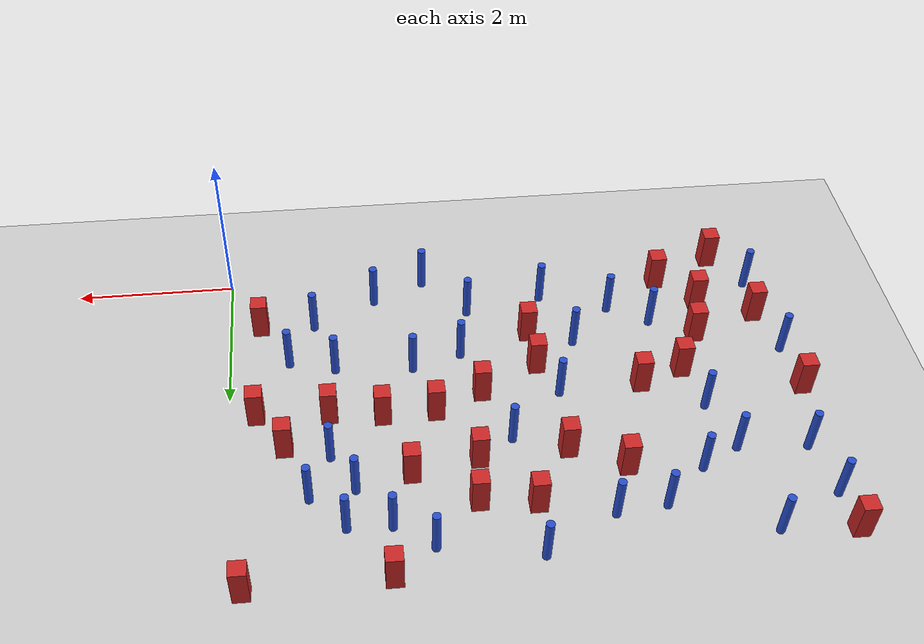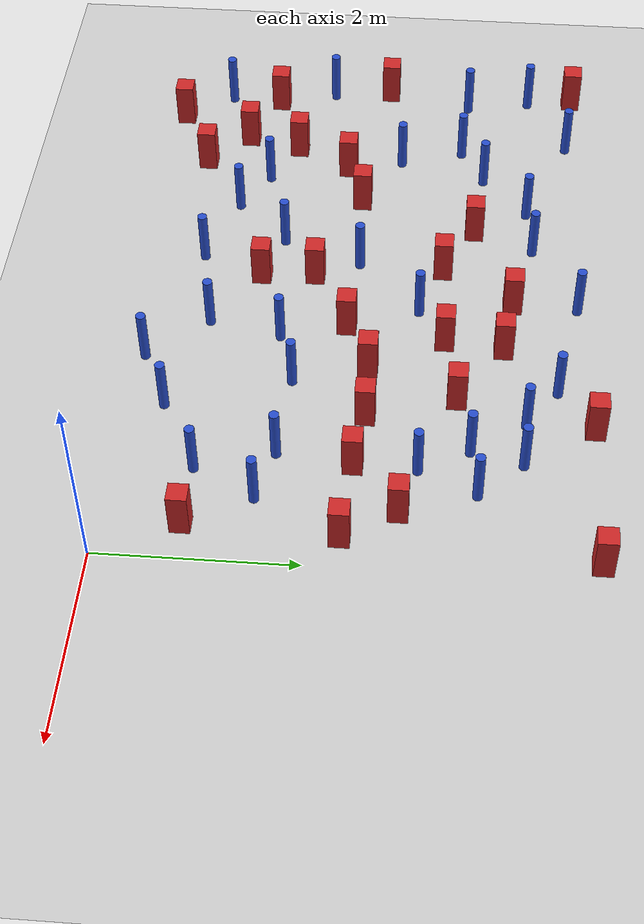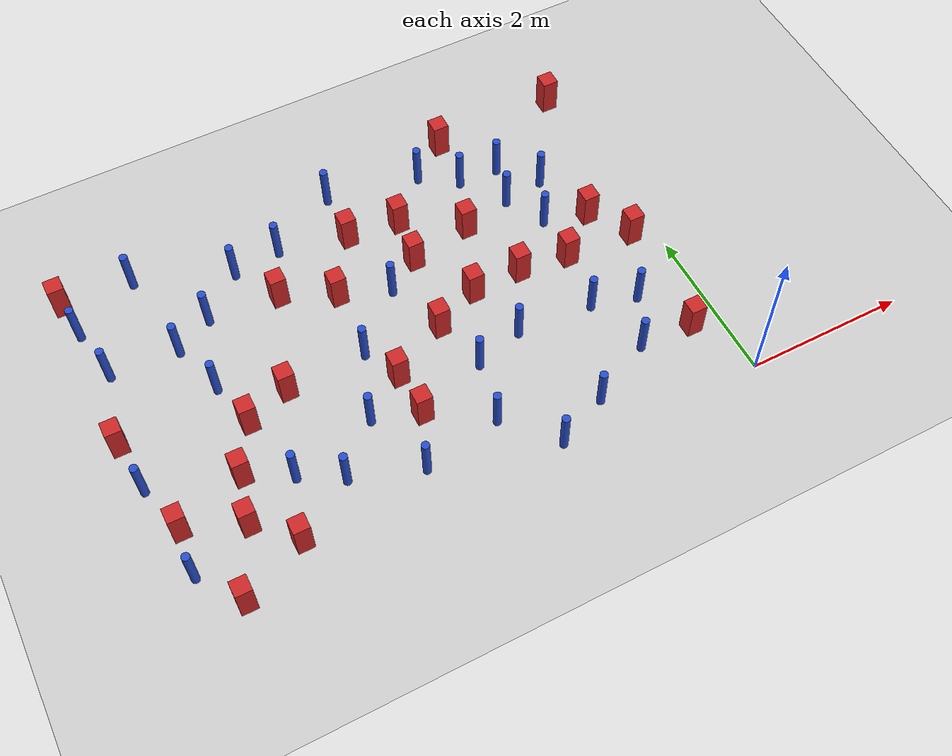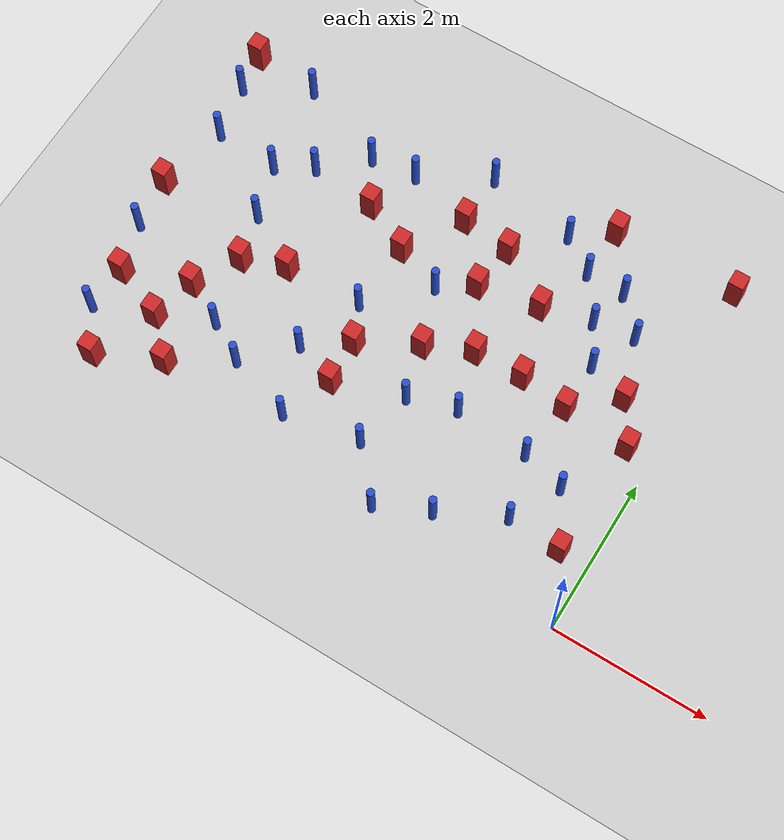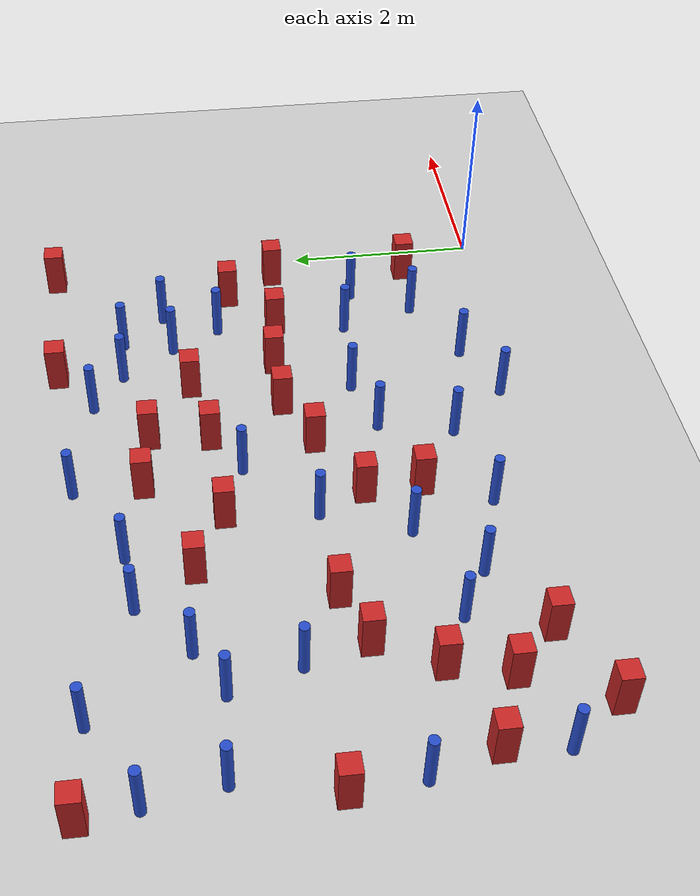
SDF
<sdf version="1.6">
 <world name="default">
  <model name="ground_plane">
   <static>1</static>
   <link name="link">
    <collision name="collision">
     <geometry><plane><normal>0 0 1</normal><size>100 100</size></plane></geometry>
     <surface><friction><ode><mu>100</mu><mu2>50</mu2></ode></friction></surface>
    </collision>
    <visual name="visual">
     <cast_shadows>0</cast_shadows>
     <geometry><plane><normal>0 0 1</normal><size>100 100</size></plane></geometry>
     <material>
      <ambient>1.0 1.0 1.0 1.0</ambient>
      <diffuse>0.8 0.8 0.8 1.0</diffuse>
      <specular>0.01 0.01 0.01 1.000000</specular>
     </material>
    </visual>
   </link>
  </model>
  <model name="square_post_obstacle1">
   <static>true</static>
   <pose>-6.99234724845 2.41279197193 8.22691968438e-08 7.2212513382e-06 -7.54495500217e-07 2.29674213826e-05</pose>
   <link name="link">
    <pose>0 0 0.25 0 -0 0</pose>
    <inertial>
     <mass>100</mass>
     <inertia>
      <ixx>0.166667</ixx>
      <ixy>0</ixy>
      <ixz>0</ixz>
      <iyy>0.166667</iyy>
      <iyz>0</iyz>
      <izz>0.166667</izz>
     </inertia>
    </inertial>
    <collision name="collision"><geometry><box><size>.2 .2 .5</size></box></geometry></collision>
    <visual name="visual">
     <geometry><box><size>.2 .2 .5</size></box></geometry>
     <material>
      <script><name>Gazebo/Red</name><uri>file://media/materials/scripts/gazebo.material</uri></script>
     </material>
    </visual>
   </link>
  </model>
  <model name="pole_obstacle0">
   <static>true</static>
   <pose>-2.29478972148 4.37844473224 2.88873142074e-08 -9.90536689859e-09 4.60219948989e-07 -1.20965994961e-07</pose>
   <link name="link">
    <pose>0 0 0.3 0 -0 0</pose>
    <inertial>
     <mass>1</mass>
     <inertia><ixx>0.145833</ixx><ixy>0</ixy><ixz>0</ixz><iyy>0.145833</iyy><iyz>0</iyz><izz>0.125</izz></inertia>
    </inertial>
    <collision name="collision">
     <geometry><cylinder><radius>0.05</radius><length>.6</length></cylinder></geometry>
    </collision>
    <visual name="visual">
     <geometry><cylinder><radius>0.05</radius><length>.6</length></cylinder></geometry>
     <material>
      <script><name>Gazebo/Blue</name><uri>file://media/materials/scripts/gazebo.material</uri></script>
     </material>
    </visual>
   </link>
  </model>
  <model name="square_post_obstacle3">
   <static>true</static>
   <pose>-3.4951687476 3.90393180794 8.22691968438e-08 7.2212513382e-06 -7.54495500217e-07 2.29674213826e-05</pose>
   <link name="link">
    <pose>0 0 0.25 0 -0 0</pose>
    <inertial>
     <mass>100</mass>
     <inertia>
      <ixx>0.166667</ixx>
      <ixy>0</ixy>
      <ixz>0</ixz>
      <iyy>0.166667</iyy>
      <iyz>0</iyz>
      <izz>0.166667</izz>
     </inertia>
    </inertial>
    <collision name="collision"><geometry><box><size>.2 .2 .5</size></box></geometry></collision>
    <visual name="visual">
     <geometry><box><size>.2 .2 .5</size></box></geometry>
     <material>
      <script><name>Gazebo/Red</name><uri>file://media/materials/scripts/gazebo.material</uri></script>
     </material>
    </visual>
   </link>
  </model>
  <model name="square_post_obstacle5">
   <static>true</static>
   <pose>-3.79861720325 1.78377909363 8.22691968438e-08 7.22125133819e-06 -7.54495500217e-07 2.29674213826e-05</pose>
   <link name="link">
    <pose>0 0 0.25 0 -0 0</pose>
    <inertial>
     <mass>100</mass>
     <inertia>
      <ixx>0.166667</ixx>
      <ixy>0</ixy>
      <ixz>0</ixz>
      <iyy>0.166667</iyy>
      <iyz>0</iyz>
      <izz>0.166667</izz>
     </inertia>
    </inertial>
    <collision name="collision"><geometry><box><size>.2 .2 .5</size></box></geometry></collision>
    <visual name="visual">
     <geometry><box><size>.2 .2 .5</size></box></geometry>
     <material>
      <script><name>Gazebo/Red</name><uri>file://media/materials/scripts/gazebo.material</uri></script>
     </material>
    </visual>
   </link>
  </model>
  <model name="pole_obstacle6">
   <static>true</static>
   <pose>-2.51424352725 0.137398515077 2.88873142074e-08 -9.90536689314e-09 4.60219949002e-07 -1.20965994953e-07</pose>
   <link name="link">
    <pose>0 0 0.3 0 -0 0</pose>
    <inertial>
     <mass>1</mass>
     <inertia><ixx>0.145833</ixx><ixy>0</ixy><ixz>0</ixz><iyy>0.145833</iyy><iyz>0</iyz><izz>0.125</izz></inertia>
    </inertial>
    <collision name="collision">
     <geometry><cylinder><radius>0.05</radius><length>.6</length></cylinder></geometry>
    </collision>
    <visual name="visual">
     <geometry><cylinder><radius>0.05</radius><length>.6</length></cylinder></geometry>
     <material>
      <script><name>Gazebo/Blue</name><uri>file://media/materials/scripts/gazebo.material</uri></script>
     </material>
    </visual>
   </link>
  </model>
  <model name="square_post_obstacle10">
   <static>true</static>
   <pose>-3.7672462123 1.2102745779 8.22691968438e-08 7.2212513382e-06 -7.54495500217e-07 2.29674213826e-05</pose>
   <link name="link">
    <pose>0 0 0.25 0 -0 0</pose>
    <inertial>
     <mass>100</mass>
     <inertia>
      <ixx>0.166667</ixx>
      <ixy>0</ixy>
      <ixz>0</ixz>
      <iyy>0.166667</iyy>
      <iyz>0</iyz>
      <izz>0.166667</izz>
     </inertia>
    </inertial>
    <collision name="collision"><geometry><box><size>.2 .2 .5</size></box></geometry></collision>
    <visual name="visual">
     <geometry><box><size>.2 .2 .5</size></box></geometry>
     <material>
      <script><name>Gazebo/Red</name><uri>file://media/materials/scripts/gazebo.material</uri></script>
     </material>
    </visual>
   </link>
  </model>
  <model name="square_post_obstacle17">
   <static>true</static>
   <pose>-4.60330524888 3.47028318909 8.22691968438e-08 7.2212513382e-06 -7.54495500217e-07 2.29674213826e-05</pose>
   <link name="link">
    <pose>0 0 0.25 0 -0 0</pose>
    <inertial>
     <mass>100</mass>
     <inertia>
      <ixx>0.166667</ixx>
      <ixy>0</ixy>
      <ixz>0</ixz>
      <iyy>0.166667</iyy>
      <iyz>0</iyz>
      <izz>0.166667</izz>
     </inertia>
    </inertial>
    <collision name="collision"><geometry><box><size>.2 .2 .5</size></box></geometry></collision>
    <visual name="visual">
     <geometry><box><size>.2 .2 .5</size></box></geometry>
     <material>
      <script><name>Gazebo/Red</name><uri>file://media/materials/scripts/gazebo.material</uri></script>
     </material>
    </visual>
   </link>
  </model>
  <model name="square_post_obstacle19">
   <static>true</static>
   <pose>-5.5775447937 2.00528172763 8.22691968438e-08 7.2212513382e-06 -7.54495500217e-07 2.29674213826e-05</pose>
   <link name="link">
    <pose>0 0 0.25 0 -0 0</pose>
    <inertial>
     <mass>100</mass>
     <inertia>
      <ixx>0.166667</ixx>
      <ixy>0</ixy>
      <ixz>0</ixz>
      <iyy>0.166667</iyy>
      <iyz>0</iyz>
      <izz>0.166667</izz>
     </inertia>
    </inertial>
    <collision name="collision"><geometry><box><size>.2 .2 .5</size></box></geometry></collision>
    <visual name="visual">
     <geometry><box><size>.2 .2 .5</size></box></geometry>
     <material>
      <script><name>Gazebo/Red</name><uri>file://media/materials/scripts/gazebo.material</uri></script>
     </material>
    </visual>
   </link>
  </model>
  <model name="pole_obstacle14">
   <static>true</static>
   <pose>-5.48069631043 3.55009263732 2.88873142074e-08 -9.90536690245e-09 4.6021994898e-07 -1.20965994966e-07</pose>
   <link name="link">
    <pose>0 0 0.3 0 -0 0</pose>
    <inertial>
     <mass>1</mass>
     <inertia><ixx>0.145833</ixx><ixy>0</ixy><ixz>0</ixz><iyy>0.145833</iyy><iyz>0</iyz><izz>0.125</izz></inertia>
    </inertial>
    <collision name="collision">
     <geometry><cylinder><radius>0.05</radius><length>.6</length></cylinder></geometry>
    </collision>
    <visual name="visual">
     <geometry><cylinder><radius>0.05</radius><length>.6</length></cylinder></geometry>
     <material>
      <script><name>Gazebo/Blue</name><uri>file://media/materials/scripts/gazebo.material</uri></script>
     </material>
    </visual>
   </link>
  </model>
  <model name="pole_obstacle23">
   <static>true</static>
   <pose>-4.02993113595 0.554640806604 2.88873142074e-08 -9.90536690176e-09 4.60219948981e-07 -1.20965994965e-07</pose>
   <link name="link">
    <pose>0 0 0.3 0 -0 0</pose>
    <inertial>
     <mass>1</mass>
     <inertia><ixx>0.145833</ixx><ixy>0</ixy><ixz>0</ixz><iyy>0.145833</iyy><iyz>0</iyz><izz>0.125</izz></inertia>
    </inertial>
    <collision name="collision">
     <geometry><cylinder><radius>0.05</radius><length>.6</length></cylinder></geometry>
    </collision>
    <visual name="visual">
     <geometry><cylinder><radius>0.05</radius><length>.6</length></cylinder></geometry>
     <material>
      <script><name>Gazebo/Blue</name><uri>file://media/materials/scripts/gazebo.material</uri></script>
     </material>
    </visual>
   </link>
  </model>
  <model name="pole_obstacle33">
   <static>true</static>
   <pose>-5.37251705867 1.12927887808 2.88873142074e-08 -9.90536689445e-09 4.60219948999e-07 -1.20965994956e-07</pose>
   <link name="link">
    <pose>0 0 0.3 0 -0 0</pose>
    <inertial>
     <mass>1</mass>
     <inertia><ixx>0.145833</ixx><ixy>0</ixy><ixz>0</ixz><iyy>0.145833</iyy><iyz>0</iyz><izz>0.125</izz></inertia>
    </inertial>
    <collision name="collision">
     <geometry><cylinder><radius>0.05</radius><length>.6</length></cylinder></geometry>
    </collision>
    <visual name="visual">
     <geometry><cylinder><radius>0.05</radius><length>.6</length></cylinder></geometry>
     <material>
      <script><name>Gazebo/Blue</name><uri>file://media/materials/scripts/gazebo.material</uri></script>
     </material>
    </visual>
   </link>
  </model>
  <model name="pole_obstacle34">
   <static>true</static>
   <pose>-1.19196894597 3.01277983991 2.88873142074e-08 -9.90536689791e-09 4.6021994899e-07 -1.20965994959e-07</pose>
   <link name="link">
    <pose>0 0 0.3 0 -0 0</pose>
    <inertial>
     <mass>1</mass>
     <inertia><ixx>0.145833</ixx><ixy>0</ixy><ixz>0</ixz><iyy>0.145833</iyy><iyz>0</iyz><izz>0.125</izz></inertia>
    </inertial>
    <collision name="collision">
     <geometry><cylinder><radius>0.05</radius><length>.6</length></cylinder></geometry>
    </collision>
    <visual name="visual">
     <geometry><cylinder><radius>0.05</radius><length>.6</length></cylinder></geometry>
     <material>
      <script><name>Gazebo/Blue</name><uri>file://media/materials/scripts/gazebo.material</uri></script>
     </material>
    </visual>
   </link>
  </model>
  <model name="pole_obstacle38">
   <static>true</static>
   <pose>-1.46026302297 3.51609721446 2.88873142074e-08 -9.90536689791e-09 4.6021994899e-07 -1.20965994959e-07</pose>
   <link name="link">
    <pose>0 0 0.3 0 -0 0</pose>
    <inertial>
     <mass>1</mass>
     <inertia><ixx>0.145833</ixx><ixy>0</ixy><ixz>0</ixz><iyy>0.145833</iyy><iyz>0</iyz><izz>0.125</izz></inertia>
    </inertial>
    <collision name="collision">
     <geometry><cylinder><radius>0.05</radius><length>.6</length></cylinder></geometry>
    </collision>
    <visual name="visual">
     <geometry><cylinder><radius>0.05</radius><length>.6</length></cylinder></geometry>
     <material>
      <script><name>Gazebo/Blue</name><uri>file://media/materials/scripts/gazebo.material</uri></script>
     </material>
    </visual>
   </link>
  </model>
  <model name="pole_obstacle39">
   <static>true</static>
   <pose>-5.94767400915 3.29031921714 2.88873142074e-08 -9.90536690245e-09 4.6021994898e-07 -1.20965994966e-07</pose>
   <link name="link">
    <pose>0 0 0.3 0 -0 0</pose>
    <inertial>
     <mass>1</mass>
     <inertia><ixx>0.145833</ixx><ixy>0</ixy><ixz>0</ixz><iyy>0.145833</iyy><iyz>0</iyz><izz>0.125</izz></inertia>
    </inertial>
    <collision name="collision">
     <geometry><cylinder><radius>0.05</radius><length>.6</length></cylinder></geometry>
    </collision>
    <visual name="visual">
     <geometry><cylinder><radius>0.05</radius><length>.6</length></cylinder></geometry>
     <material>
      <script><name>Gazebo/Blue</name><uri>file://media/materials/scripts/gazebo.material</uri></script>
     </material>
    </visual>
   </link>
  </model>
  <model name="pole_obstacle41">
   <static>true</static>
   <pose>-6.92758914699 1.74982321701 2.88873142074e-08 -9.90536689445e-09 4.60219948999e-07 -1.20965994956e-07</pose>
   <link name="link">
    <pose>0 0 0.3 0 -0 0</pose>
    <inertial>
     <mass>1</mass>
     <inertia><ixx>0.145833</ixx><ixy>0</ixy><ixz>0</ixz><iyy>0.145833</iyy><iyz>0</iyz><izz>0.125</izz></inertia>
    </inertial>
    <collision name="collision">
     <geometry><cylinder><radius>0.05</radius><length>.6</length></cylinder></geometry>
    </collision>
    <visual name="visual">
     <geometry><cylinder><radius>0.05</radius><length>.6</length></cylinder></geometry>
     <material>
      <script><name>Gazebo/Blue</name><uri>file://media/materials/scripts/gazebo.material</uri></script>
     </material>
    </visual>
   </link>
  </model>
  <model name="square_post_obstacle45">
   <static>true</static>
   <pose>-6.98330315581 4.55516592395 8.22691968438e-08 7.22125133819e-06 -7.54495500217e-07 2.29674213826e-05</pose>
   <link name="link">
    <pose>0 0 0.25 0 -0 0</pose>
    <inertial>
     <mass>100</mass>
     <inertia>
      <ixx>0.166667</ixx>
      <ixy>0</ixy>
      <ixz>0</ixz>
      <iyy>0.166667</iyy>
      <iyz>0</iyz>
      <izz>0.166667</izz>
     </inertia>
    </inertial>
    <collision name="collision"><geometry><box><size>.2 .2 .5</size></box></geometry></collision>
    <visual name="visual">
     <geometry><box><size>.2 .2 .5</size></box></geometry>
     <material>
      <script><name>Gazebo/Red</name><uri>file://media/materials/scripts/gazebo.material</uri></script>
     </material>
    </visual>
   </link>
  </model>
  <model name="square_post_obstacle49">
   <static>true</static>
   <pose>-6.73695536108 1.11498980576 8.22691968438e-08 7.2212513382e-06 -7.54495500217e-07 2.29674213826e-05</pose>
   <link name="link">
    <pose>0 0 0.25 0 -0 0</pose>
    <inertial>
     <mass>100</mass>
     <inertia>
      <ixx>0.166667</ixx>
      <ixy>0</ixy>
      <ixz>0</ixz>
      <iyy>0.166667</iyy>
      <iyz>0</iyz>
      <izz>0.166667</izz>
     </inertia>
    </inertial>
    <collision name="collision"><geometry><box><size>.2 .2 .5</size></box></geometry></collision>
    <visual name="visual">
     <geometry><box><size>.2 .2 .5</size></box></geometry>
     <material>
      <script><name>Gazebo/Red</name><uri>file://media/materials/scripts/gazebo.material</uri></script>
     </material>
    </visual>
   </link>
  </model>
  <model name="square_post_obstacle52">
   <static>true</static>
   <pose>-0.18206388332 4.77718517409 8.22691968438e-08 7.22125133819e-06 -7.54495500217e-07 2.29674213826e-05</pose>
   <link name="link">
    <pose>0 0 0.25 0 -0 0</pose>
    <inertial>
     <mass>100</mass>
     <inertia>
      <ixx>0.166667</ixx>
      <ixy>0</ixy>
      <ixz>0</ixz>
      <iyy>0.166667</iyy>
      <iyz>0</iyz>
      <izz>0.166667</izz>
     </inertia>
    </inertial>
    <collision name="collision"><geometry><box><size>.2 .2 .5</size></box></geometry></collision>
    <visual name="visual">
     <geometry><box><size>.2 .2 .5</size></box></geometry>
     <material>
      <script><name>Gazebo/Red</name><uri>file://media/materials/scripts/gazebo.material</uri></script>
     </material>
    </visual>
   </link>
  </model>
  <model name="pole_obstacle62">
   <static>true</static>
   <pose>-3.34190980343 2.92348845125 2.88873142074e-08 -9.90536689597e-09 4.60219948995e-07 -1.20965994957e-07</pose>
   <link name="link">
    <pose>0 0 0.3 0 -0 0</pose>
    <inertial>
     <mass>1</mass>
     <inertia><ixx>0.145833</ixx><ixy>0</ixy><ixz>0</ixz><iyy>0.145833</iyy><iyz>0</iyz><izz>0.125</izz></inertia>
    </inertial>
    <collision name="collision">
     <geometry><cylinder><radius>0.05</radius><length>.6</length></cylinder></geometry>
    </collision>
    <visual name="visual">
     <geometry><cylinder><radius>0.05</radius><length>.6</length></cylinder></geometry>
     <material>
      <script><name>Gazebo/Blue</name><uri>file://media/materials/scripts/gazebo.material</uri></script>
     </material>
    </visual>
   </link>
  </model>
  <model name="pole_obstacle63">
   <static>true</static>
   <pose>-3.47815531488 4.59109329088 2.88873142074e-08 -9.90536692062e-09 4.60219948937e-07 -1.20965994985e-07</pose>
   <link name="link">
    <pose>0 0 0.3 0 -0 0</pose>
    <inertial>
     <mass>1</mass>
     <inertia><ixx>0.145833</ixx><ixy>0</ixy><ixz>0</ixz><iyy>0.145833</iyy><iyz>0</iyz><izz>0.125</izz></inertia>
    </inertial>
    <collision name="collision">
     <geometry><cylinder><radius>0.05</radius><length>.6</length></cylinder></geometry>
    </collision>
    <visual name="visual">
     <geometry><cylinder><radius>0.05</radius><length>.6</length></cylinder></geometry>
     <material>
      <script><name>Gazebo/Blue</name><uri>file://media/materials/scripts/gazebo.material</uri></script>
     </material>
    </visual>
   </link>
  </model>
  <model name="square_post_obstacle75">
   <static>true</static>
   <pose>-1.20363890253 2.38159558971 8.22691968438e-08 7.2212513382e-06 -7.54495500217e-07 2.29674213826e-05</pose>
   <link name="link">
    <pose>0 0 0.25 0 -0 0</pose>
    <inertial>
     <mass>100</mass>
     <inertia>
      <ixx>0.166667</ixx>
      <ixy>0</ixy>
      <ixz>0</ixz>
      <iyy>0.166667</iyy>
      <iyz>0</iyz>
      <izz>0.166667</izz>
     </inertia>
    </inertial>
    <collision name="collision"><geometry><box><size>.2 .2 .5</size></box></geometry></collision>
    <visual name="visual">
     <geometry><box><size>.2 .2 .5</size></box></geometry>
     <material>
      <script><name>Gazebo/Red</name><uri>file://media/materials/scripts/gazebo.material</uri></script>
     </material>
    </visual>
   </link>
  </model>
  <model name="pole_obstacle70">
   <static>true</static>
   <pose>-1.30500850163 1.6211904246 2.88873142074e-08 -9.90536689672e-09 4.60219948993e-07 -1.20965994959e-07</pose>
   <link name="link">
    <pose>0 0 0.3 0 -0 0</pose>
    <inertial>
     <mass>1</mass>
     <inertia><ixx>0.145833</ixx><ixy>0</ixy><ixz>0</ixz><iyy>0.145833</iyy><iyz>0</iyz><izz>0.125</izz></inertia>
    </inertial>
    <collision name="collision">
     <geometry><cylinder><radius>0.05</radius><length>.6</length></cylinder></geometry>
    </collision>
    <visual name="visual">
     <geometry><cylinder><radius>0.05</radius><length>.6</length></cylinder></geometry>
     <material>
      <script><name>Gazebo/Blue</name><uri>file://media/materials/scripts/gazebo.material</uri></script>
     </material>
    </visual>
   </link>
  </model>
  <model name="pole_obstacle76">
   <static>true</static>
   <pose>-1.06769631439 0.840580318778 2.88873142074e-08 -9.90536689692e-09 4.60219948993e-07 -1.20965994958e-07</pose>
   <link name="link">
    <pose>0 0 0.3 0 -0 0</pose>
    <inertial>
     <mass>1</mass>
     <inertia><ixx>0.145833</ixx><ixy>0</ixy><ixz>0</ixz><iyy>0.145833</iyy><iyz>0</iyz><izz>0.125</izz></inertia>
    </inertial>
    <collision name="collision">
     <geometry><cylinder><radius>0.05</radius><length>.6</length></cylinder></geometry>
    </collision>
    <visual name="visual">
     <geometry><cylinder><radius>0.05</radius><length>.6</length></cylinder></geometry>
     <material>
      <script><name>Gazebo/Blue</name><uri>file://media/materials/scripts/gazebo.material</uri></script>
     </material>
    </visual>
   </link>
  </model>
  <model name="square_post_obstacle77">
   <static>true</static>
   <pose>-3.06769729861 2.17916987684 8.22691968438e-08 7.2212513382e-06 -7.54495500217e-07 2.29674213826e-05</pose>
   <link name="link">
    <pose>0 0 0.25 0 -0 0</pose>
    <inertial>
     <mass>100</mass>
     <inertia>
      <ixx>0.166667</ixx>
      <ixy>0</ixy>
      <ixz>0</ixz>
      <iyy>0.166667</iyy>
      <iyz>0</iyz>
      <izz>0.166667</izz>
     </inertia>
    </inertial>
    <collision name="collision"><geometry><box><size>.2 .2 .5</size></box></geometry></collision>
    <visual name="visual">
     <geometry><box><size>.2 .2 .5</size></box></geometry>
     <material>
      <script><name>Gazebo/Red</name><uri>file://media/materials/scripts/gazebo.material</uri></script>
     </material>
    </visual>
   </link>
  </model>
  <model name="pole_obstacle80">
   <static>true</static>
   <pose>-5.73793172201 2.61033689047 2.88873142074e-08 -9.90536690245e-09 4.6021994898e-07 -1.20965994966e-07</pose>
   <link name="link">
    <pose>0 0 0.3 0 -0 0</pose>
    <inertial>
     <mass>1</mass>
     <inertia><ixx>0.145833</ixx><ixy>0</ixy><ixz>0</ixz><iyy>0.145833</iyy><iyz>0</iyz><izz>0.125</izz></inertia>
    </inertial>
    <collision name="collision">
     <geometry><cylinder><radius>0.05</radius><length>.6</length></cylinder></geometry>
    </collision>
    <visual name="visual">
     <geometry><cylinder><radius>0.05</radius><length>.6</length></cylinder></geometry>
     <material>
      <script><name>Gazebo/Blue</name><uri>file://media/materials/scripts/gazebo.material</uri></script>
     </material>
    </visual>
   </link>
  </model>
  <model name="pole_obstacle85">
   <static>true</static>
   <pose>-6.11553343876 4.48749596979 2.88873142074e-08 -9.90536690842e-09 4.60219948965e-07 -1.20965994976e-07</pose>
   <link name="link">
    <pose>0 0 0.3 0 -0 0</pose>
    <inertial>
     <mass>1</mass>
     <inertia><ixx>0.145833</ixx><ixy>0</ixy><ixz>0</ixz><iyy>0.145833</iyy><iyz>0</iyz><izz>0.125</izz></inertia>
    </inertial>
    <collision name="collision">
     <geometry><cylinder><radius>0.05</radius><length>.6</length></cylinder></geometry>
    </collision>
    <visual name="visual">
     <geometry><cylinder><radius>0.05</radius><length>.6</length></cylinder></geometry>
     <material>
      <script><name>Gazebo/Blue</name><uri>file://media/materials/scripts/gazebo.material</uri></script>
     </material>
    </visual>
   </link>
  </model>
  <model name="pole_obstacle86">
   <static>true</static>
   <pose>-4.33051756364 1.40411948128 2.88873142074e-08 -9.90536689445e-09 4.60219948999e-07 -1.20965994956e-07</pose>
   <link name="link">
    <pose>0 0 0.3 0 -0 0</pose>
    <inertial>
     <mass>1</mass>
     <inertia><ixx>0.145833</ixx><ixy>0</ixy><ixz>0</ixz><iyy>0.145833</iyy><iyz>0</iyz><izz>0.125</izz></inertia>
    </inertial>
    <collision name="collision">
     <geometry><cylinder><radius>0.05</radius><length>.6</length></cylinder></geometry>
    </collision>
    <visual name="visual">
     <geometry><cylinder><radius>0.05</radius><length>.6</length></cylinder></geometry>
     <material>
      <script><name>Gazebo/Blue</name><uri>file://media/materials/scripts/gazebo.material</uri></script>
     </material>
    </visual>
   </link>
  </model>
  <model name="pole_obstacle90">
   <static>true</static>
   <pose>-1.86055483216 0.433381364916 2.88873142074e-08 -9.90536689733e-09 4.60219948992e-07 -1.20965994959e-07</pose>
   <link name="link">
    <pose>0 0 0.3 0 -0 0</pose>
    <inertial>
     <mass>1</mass>
     <inertia><ixx>0.145833</ixx><ixy>0</ixy><ixz>0</ixz><iyy>0.145833</iyy><iyz>0</iyz><izz>0.125</izz></inertia>
    </inertial>
    <collision name="collision">
     <geometry><cylinder><radius>0.05</radius><length>.6</length></cylinder></geometry>
    </collision>
    <visual name="visual">
     <geometry><cylinder><radius>0.05</radius><length>.6</length></cylinder></geometry>
     <material>
      <script><name>Gazebo/Blue</name><uri>file://media/materials/scripts/gazebo.material</uri></script>
     </material>
    </visual>
   </link>
  </model>
  <model name="square_post_obstacle94">
   <static>true</static>
   <pose>-5.60438121168 0.384743408011 8.22691968438e-08 7.22125133819e-06 -7.54495500217e-07 2.29674213826e-05</pose>
   <link name="link">
    <pose>0 0 0.25 0 -0 0</pose>
    <inertial>
     <mass>100</mass>
     <inertia>
      <ixx>0.166667</ixx>
      <ixy>0</ixy>
      <ixz>0</ixz>
      <iyy>0.166667</iyy>
      <iyz>0</iyz>
      <izz>0.166667</izz>
     </inertia>
    </inertial>
    <collision name="collision"><geometry><box><size>.2 .2 .5</size></box></geometry></collision>
    <visual name="visual">
     <geometry><box><size>.2 .2 .5</size></box></geometry>
     <material>
      <script><name>Gazebo/Red</name><uri>file://media/materials/scripts/gazebo.material</uri></script>
     </material>
    </visual>
   </link>
  </model>
  <model name="pole_obstacle107">
   <static>true</static>
   <pose>-2.88154702013 1.49941745192 2.88873142074e-08 -9.90536689395e-09 4.60219949e-07 -1.20965994953e-07</pose>
   <link name="link">
    <pose>0 0 0.3 0 -0 0</pose>
    <inertial>
     <mass>1</mass>
     <inertia><ixx>0.145833</ixx><ixy>0</ixy><ixz>0</ixz><iyy>0.145833</iyy><iyz>0</iyz><izz>0.125</izz></inertia>
    </inertial>
    <collision name="collision">
     <geometry><cylinder><radius>0.05</radius><length>.6</length></cylinder></geometry>
    </collision>
    <visual name="visual">
     <geometry><cylinder><radius>0.05</radius><length>.6</length></cylinder></geometry>
     <material>
      <script><name>Gazebo/Blue</name><uri>file://media/materials/scripts/gazebo.material</uri></script>
     </material>
    </visual>
   </link>
  </model>
  <model name="pole_obstacle112">
   <static>true</static>
   <pose>-2.26708684215 1.68302641234 2.88873142074e-08 -9.90536689395e-09 4.60219949e-07 -1.20965994953e-07</pose>
   <link name="link">
    <pose>0 0 0.3 0 -0 0</pose>
    <inertial>
     <mass>1</mass>
     <inertia><ixx>0.145833</ixx><ixy>0</ixy><ixz>0</ixz><iyy>0.145833</iyy><iyz>0</iyz><izz>0.125</izz></inertia>
    </inertial>
    <collision name="collision">
     <geometry><cylinder><radius>0.05</radius><length>.6</length></cylinder></geometry>
    </collision>
    <visual name="visual">
     <geometry><cylinder><radius>0.05</radius><length>.6</length></cylinder></geometry>
     <material>
      <script><name>Gazebo/Blue</name><uri>file://media/materials/scripts/gazebo.material</uri></script>
     </material>
    </visual>
   </link>
  </model>
  <model name="square_post_obstacle111">
   <static>true</static>
   <pose>-0.658460676233 2.85403619867 8.22691968438e-08 7.2212513382e-06 -7.54495500217e-07 2.29674213826e-05</pose>
   <link name="link">
    <pose>0 0 0.25 0 -0 0</pose>
    <inertial>
     <mass>100</mass>
     <inertia>
      <ixx>0.166667</ixx>
      <ixy>0</ixy>
      <ixz>0</ixz>
      <iyy>0.166667</iyy>
      <iyz>0</iyz>
      <izz>0.166667</izz>
     </inertia>
    </inertial>
    <collision name="collision"><geometry><box><size>.2 .2 .5</size></box></geometry></collision>
    <visual name="visual">
     <geometry><box><size>.2 .2 .5</size></box></geometry>
     <material>
      <script><name>Gazebo/Red</name><uri>file://media/materials/scripts/gazebo.material</uri></script>
     </material>
    </visual>
   </link>
  </model>
  <model name="pole_obstacle129">
   <static>true</static>
   <pose>-0.925250714462 3.60135355044 2.88873142074e-08 -9.90536689636e-09 4.60219948994e-07 -1.20965994958e-07</pose>
   <link name="link">
    <pose>0 0 0.3 0 -0 0</pose>
    <inertial>
     <mass>1</mass>
     <inertia><ixx>0.145833</ixx><ixy>0</ixy><ixz>0</ixz><iyy>0.145833</iyy><iyz>0</iyz><izz>0.125</izz></inertia>
    </inertial>
    <collision name="collision">
     <geometry><cylinder><radius>0.05</radius><length>.6</length></cylinder></geometry>
    </collision>
    <visual name="visual">
     <geometry><cylinder><radius>0.05</radius><length>.6</length></cylinder></geometry>
     <material>
      <script><name>Gazebo/Blue</name><uri>file://media/materials/scripts/gazebo.material</uri></script>
     </material>
    </visual>
   </link>
  </model>
  <model name="pole_obstacle135">
   <static>true</static>
   <pose>-6.9210140498 4.04785901093 2.88873142074e-08 -9.90536690763e-09 4.60219948967e-07 -1.20965994975e-07</pose>
   <link name="link">
    <pose>0 0 0.3 0 -0 0</pose>
    <inertial>
     <mass>1</mass>
     <inertia><ixx>0.145833</ixx><ixy>0</ixy><ixz>0</ixz><iyy>0.145833</iyy><iyz>0</iyz><izz>0.125</izz></inertia>
    </inertial>
    <collision name="collision">
     <geometry><cylinder><radius>0.05</radius><length>.6</length></cylinder></geometry>
    </collision>
    <visual name="visual">
     <geometry><cylinder><radius>0.05</radius><length>.6</length></cylinder></geometry>
     <material>
      <script><name>Gazebo/Blue</name><uri>file://media/materials/scripts/gazebo.material</uri></script>
     </material>
    </visual>
   </link>
  </model>
  <model name="square_post_obstacle131">
   <static>true</static>
   <pose>-5.02670868919 2.20553475868 8.22691968438e-08 7.2212513382e-06 -7.54495500217e-07 2.29674213826e-05</pose>
   <link name="link">
    <pose>0 0 0.25 0 -0 0</pose>
    <inertial>
     <mass>100</mass>
     <inertia>
      <ixx>0.166667</ixx>
      <ixy>0</ixy>
      <ixz>0</ixz>
      <iyy>0.166667</iyy>
      <iyz>0</iyz>
      <izz>0.166667</izz>
     </inertia>
    </inertial>
    <collision name="collision"><geometry><box><size>.2 .2 .5</size></box></geometry></collision>
    <visual name="visual">
     <geometry><box><size>.2 .2 .5</size></box></geometry>
     <material>
      <script><name>Gazebo/Red</name><uri>file://media/materials/scripts/gazebo.material</uri></script>
     </material>
    </visual>
   </link>
  </model>
  <model name="square_post_obstacle150">
   <static>true</static>
   <pose>-2.83639520328 3.82017207054 8.22691968438e-08 7.2212513382e-06 -7.54495500217e-07 2.29674213826e-05</pose>
   <link name="link">
    <pose>0 0 0.25 0 -0 0</pose>
    <inertial>
     <mass>100</mass>
     <inertia>
      <ixx>0.166667</ixx>
      <ixy>0</ixy>
      <ixz>0</ixz>
      <iyy>0.166667</iyy>
      <iyz>0</iyz>
      <izz>0.166667</izz>
     </inertia>
    </inertial>
    <collision name="collision"><geometry><box><size>.2 .2 .5</size></box></geometry></collision>
    <visual name="visual">
     <geometry><box><size>.2 .2 .5</size></box></geometry>
     <material>
      <script><name>Gazebo/Red</name><uri>file://media/materials/scripts/gazebo.material</uri></script>
     </material>
    </visual>
   </link>
  </model>
  <model name="square_post_obstacle153">
   <static>true</static>
   <pose>-1.83958237217 2.45895787099 8.22691968438e-08 7.2212513382e-06 -7.54495500217e-07 2.29674213826e-05</pose>
   <link name="link">
    <pose>0 0 0.25 0 -0 0</pose>
    <inertial>
     <mass>100</mass>
     <inertia>
      <ixx>0.166667</ixx>
      <ixy>0</ixy>
      <ixz>0</ixz>
      <iyy>0.166667</iyy>
      <iyz>0</iyz>
      <izz>0.166667</izz>
     </inertia>
    </inertial>
    <collision name="collision"><geometry><box><size>.2 .2 .5</size></box></geometry></collision>
    <visual name="visual">
     <geometry><box><size>.2 .2 .5</size></box></geometry>
     <material>
      <script><name>Gazebo/Red</name><uri>file://media/materials/scripts/gazebo.material</uri></script>
     </material>
    </visual>
   </link>
  </model>
  <model name="pole_obstacle163">
   <static>true</static>
   <pose>-3.04925418162 0.743153620455 2.88873142074e-08 -9.90536690901e-09 4.60219948964e-07 -1.20965994979e-07</pose>
   <link name="link">
    <pose>0 0 0.3 0 -0 0</pose>
    <inertial>
     <mass>1</mass>
     <inertia><ixx>0.145833</ixx><ixy>0</ixy><ixz>0</ixz><iyy>0.145833</iyy><iyz>0</iyz><izz>0.125</izz></inertia>
    </inertial>
    <collision name="collision">
     <geometry><cylinder><radius>0.05</radius><length>.6</length></cylinder></geometry>
    </collision>
    <visual name="visual">
     <geometry><cylinder><radius>0.05</radius><length>.6</length></cylinder></geometry>
     <material>
      <script><name>Gazebo/Blue</name><uri>file://media/materials/scripts/gazebo.material</uri></script>
     </material>
    </visual>
   </link>
  </model>
  <model name="square_post_obstacle158">
   <static>true</static>
   <pose>-3.96459720819 3.15129335369 8.22691968438e-08 7.22125133819e-06 -7.54495500217e-07 2.29674213826e-05</pose>
   <link name="link">
    <pose>0 0 0.25 0 -0 0</pose>
    <inertial>
     <mass>100</mass>
     <inertia>
      <ixx>0.166667</ixx>
      <ixy>0</ixy>
      <ixz>0</ixz>
      <iyy>0.166667</iyy>
      <iyz>0</iyz>
      <izz>0.166667</izz>
     </inertia>
    </inertial>
    <collision name="collision"><geometry><box><size>.2 .2 .5</size></box></geometry></collision>
    <visual name="visual">
     <geometry><box><size>.2 .2 .5</size></box></geometry>
     <material>
      <script><name>Gazebo/Red</name><uri>file://media/materials/scripts/gazebo.material</uri></script>
     </material>
    </visual>
   </link>
  </model>
  <model name="pole_obstacle175">
   <static>true</static>
   <pose>-6.78749826561 3.34332105583 2.88873142074e-08 -9.90536690245e-09 4.6021994898e-07 -1.20965994966e-07</pose>
   <link name="link">
    <pose>0 0 0.3 0 -0 0</pose>
    <inertial>
     <mass>1</mass>
     <inertia><ixx>0.145833</ixx><ixy>0</ixy><ixz>0</ixz><iyy>0.145833</iyy><iyz>0</iyz><izz>0.125</izz></inertia>
    </inertial>
    <collision name="collision">
     <geometry><cylinder><radius>0.05</radius><length>.6</length></cylinder></geometry>
    </collision>
    <visual name="visual">
     <geometry><cylinder><radius>0.05</radius><length>.6</length></cylinder></geometry>
     <material>
      <script><name>Gazebo/Blue</name><uri>file://media/materials/scripts/gazebo.material</uri></script>
     </material>
    </visual>
   </link>
  </model>
  <model name="square_post_obstacle168">
   <static>true</static>
   <pose>-2.48279342825 2.44160743717 8.22691968438e-08 7.2212513382e-06 -7.54495500217e-07 2.29674213826e-05</pose>
   <link name="link">
    <pose>0 0 0.25 0 -0 0</pose>
    <inertial>
     <mass>100</mass>
     <inertia>
      <ixx>0.166667</ixx>
      <ixy>0</ixy>
      <ixz>0</ixz>
      <iyy>0.166667</iyy>
      <iyz>0</iyz>
      <izz>0.166667</izz>
     </inertia>
    </inertial>
    <collision name="collision"><geometry><box><size>.2 .2 .5</size></box></geometry></collision>
    <visual name="visual">
     <geometry><box><size>.2 .2 .5</size></box></geometry>
     <material>
      <script><name>Gazebo/Red</name><uri>file://media/materials/scripts/gazebo.material</uri></script>
     </material>
    </visual>
   </link>
  </model>
  <model name="square_post_obstacle169">
   <static>true</static>
   <pose>-2.11341856898 3.36128979341 8.22691968438e-08 7.2212513382e-06 -7.54495500217e-07 2.29674213826e-05</pose>
   <link name="link">
    <pose>0 0 0.25 0 -0 0</pose>
    <inertial>
     <mass>100</mass>
     <inertia>
      <ixx>0.166667</ixx>
      <ixy>0</ixy>
      <ixz>0</ixz>
      <iyy>0.166667</iyy>
      <iyz>0</iyz>
      <izz>0.166667</izz>
     </inertia>
    </inertial>
    <collision name="collision"><geometry><box><size>.2 .2 .5</size></box></geometry></collision>
    <visual name="visual">
     <geometry><box><size>.2 .2 .5</size></box></geometry>
     <material>
      <script><name>Gazebo/Red</name><uri>file://media/materials/scripts/gazebo.material</uri></script>
     </material>
    </visual>
   </link>
  </model>
  <model name="square_post_obstacle170">
   <static>true</static>
   <pose>-6.40373937543 0.0188311304369 8.22691968438e-08 7.2212513382e-06 -7.54495500217e-07 2.29674213826e-05</pose>
   <link name="link">
    <pose>0 0 0.25 0 -0 0</pose>
    <inertial>
     <mass>100</mass>
     <inertia>
      <ixx>0.166667</ixx>
      <ixy>0</ixy>
      <ixz>0</ixz>
      <iyy>0.166667</iyy>
      <iyz>0</iyz>
      <izz>0.166667</izz>
     </inertia>
    </inertial>
    <collision name="collision"><geometry><box><size>.2 .2 .5</size></box></geometry></collision>
    <visual name="visual">
     <geometry><box><size>.2 .2 .5</size></box></geometry>
     <material>
      <script><name>Gazebo/Red</name><uri>file://media/materials/scripts/gazebo.material</uri></script>
     </material>
    </visual>
   </link>
  </model>
  <model name="square_post_obstacle179">
   <static>true</static>
   <pose>-0.386881272526 0.819234114612 8.22691968438e-08 7.2212513382e-06 -7.54495500217e-07 2.29674213826e-05</pose>
   <link name="link">
    <pose>0 0 0.25 0 -0 0</pose>
    <inertial>
     <mass>100</mass>
     <inertia>
      <ixx>0.166667</ixx>
      <ixy>0</ixy>
      <ixz>0</ixz>
      <iyy>0.166667</iyy>
      <iyz>0</iyz>
      <izz>0.166667</izz>
     </inertia>
    </inertial>
    <collision name="collision"><geometry><box><size>.2 .2 .5</size></box></geometry></collision>
    <visual name="visual">
     <geometry><box><size>.2 .2 .5</size></box></geometry>
     <material>
      <script><name>Gazebo/Red</name><uri>file://media/materials/scripts/gazebo.material</uri></script>
     </material>
    </visual>
   </link>
  </model>
  <model name="square_post_obstacle181">
   <static>true</static>
   <pose>-6.04862093489 0.827018596601 8.22691968438e-08 7.2212513382e-06 -7.54495500217e-07 2.29674213826e-05</pose>
   <link name="link">
    <pose>0 0 0.25 0 -0 0</pose>
    <inertial>
     <mass>100</mass>
     <inertia>
      <ixx>0.166667</ixx>
      <ixy>0</ixy>
      <ixz>0</ixz>
      <iyy>0.166667</iyy>
      <iyz>0</iyz>
      <izz>0.166667</izz>
     </inertia>
    </inertial>
    <collision name="collision"><geometry><box><size>.2 .2 .5</size></box></geometry></collision>
    <visual name="visual">
     <geometry><box><size>.2 .2 .5</size></box></geometry>
     <material>
      <script><name>Gazebo/Red</name><uri>file://media/materials/scripts/gazebo.material</uri></script>
     </material>
    </visual>
   </link>
  </model>
  <model name="square_post_obstacle182">
   <static>true</static>
   <pose>-5.89580492544 1.41384232753 8.22691968438e-08 7.2212513382e-06 -7.54495500217e-07 2.29674213826e-05</pose>
   <link name="link">
    <pose>0 0 0.25 0 -0 0</pose>
    <inertial>
     <mass>100</mass>
     <inertia>
      <ixx>0.166667</ixx>
      <ixy>0</ixy>
      <ixz>0</ixz>
      <iyy>0.166667</iyy>
      <iyz>0</iyz>
      <izz>0.166667</izz>
     </inertia>
    </inertial>
    <collision name="collision"><geometry><box><size>.2 .2 .5</size></box></geometry></collision>
    <visual name="visual">
     <geometry><box><size>.2 .2 .5</size></box></geometry>
     <material>
      <script><name>Gazebo/Red</name><uri>file://media/materials/scripts/gazebo.material</uri></script>
     </material>
    </visual>
   </link>
  </model>
  <model name="square_post_obstacle186">
   <static>true</static>
   <pose>-2.91109227641 3.20881983921 8.22691968438e-08 7.2212513382e-06 -7.54495500217e-07 2.29674213826e-05</pose>
   <link name="link">
    <pose>0 0 0.25 0 -0 0</pose>
    <inertial>
     <mass>100</mass>
     <inertia>
      <ixx>0.166667</ixx>
      <ixy>0</ixy>
      <ixz>0</ixz>
      <iyy>0.166667</iyy>
      <iyz>0</iyz>
      <izz>0.166667</izz>
     </inertia>
    </inertial>
    <collision name="collision"><geometry><box><size>.2 .2 .5</size></box></geometry></collision>
    <visual name="visual">
     <geometry><box><size>.2 .2 .5</size></box></geometry>
     <material>
      <script><name>Gazebo/Red</name><uri>file://media/materials/scripts/gazebo.material</uri></script>
     </material>
    </visual>
   </link>
  </model>
  <model name="square_post_obstacle190">
   <static>true</static>
   <pose>-1.81248452567 4.74414663398 8.22691968438e-08 7.2212513382e-06 -7.54495500217e-07 2.29674213826e-05</pose>
   <link name="link">
    <pose>0 0 0.25 0 -0 0</pose>
    <inertial>
     <mass>100</mass>
     <inertia>
      <ixx>0.166667</ixx>
      <ixy>0</ixy>
      <ixz>0</ixz>
      <iyy>0.166667</iyy>
      <iyz>0</iyz>
      <izz>0.166667</izz>
     </inertia>
    </inertial>
    <collision name="collision"><geometry><box><size>.2 .2 .5</size></box></geometry></collision>
    <visual name="visual">
     <geometry><box><size>.2 .2 .5</size></box></geometry>
     <material>
      <script><name>Gazebo/Red</name><uri>file://media/materials/scripts/gazebo.material</uri></script>
     </material>
    </visual>
   </link>
  </model>
  <model name="pole_obstacle188">
   <static>true</static>
   <pose>-4.87845980042 0.840611349132 2.88873142074e-08 -9.90536689837e-09 4.60219948989e-07 -1.2096599496e-07</pose>
   <link name="link">
    <pose>0 0 0.3 0 -0 0</pose>
    <inertial>
     <mass>1</mass>
     <inertia><ixx>0.145833</ixx><ixy>0</ixy><ixz>0</ixz><iyy>0.145833</iyy><iyz>0</iyz><izz>0.125</izz></inertia>
    </inertial>
    <collision name="collision">
     <geometry><cylinder><radius>0.05</radius><length>.6</length></cylinder></geometry>
    </collision>
    <visual name="visual">
     <geometry><cylinder><radius>0.05</radius><length>.6</length></cylinder></geometry>
     <material>
      <script><name>Gazebo/Blue</name><uri>file://media/materials/scripts/gazebo.material</uri></script>
     </material>
    </visual>
   </link>
  </model>
  <model name="pole_obstacle189">
   <static>true</static>
   <pose>-4.95066244154 4.04075293309 2.88873142074e-08 -9.90536690763e-09 4.60219948967e-07 -1.20965994975e-07</pose>
   <link name="link">
    <pose>0 0 0.3 0 -0 0</pose>
    <inertial>
     <mass>1</mass>
     <inertia><ixx>0.145833</ixx><ixy>0</ixy><ixz>0</ixz><iyy>0.145833</iyy><iyz>0</iyz><izz>0.125</izz></inertia>
    </inertial>
    <collision name="collision">
     <geometry><cylinder><radius>0.05</radius><length>.6</length></cylinder></geometry>
    </collision>
    <visual name="visual">
     <geometry><cylinder><radius>0.05</radius><length>.6</length></cylinder></geometry>
     <material>
      <script><name>Gazebo/Blue</name><uri>file://media/materials/scripts/gazebo.material</uri></script>
     </material>
    </visual>
   </link>
  </model>
  <model name="pole_obstacle190">
   <static>true</static>
   <pose>-0.739704204592 1.47007081161 2.88873142074e-08 -9.90536689855e-09 4.60219948989e-07 -1.20965994962e-07</pose>
   <link name="link">
    <pose>0 0 0.3 0 -0 0</pose>
    <inertial>
     <mass>1</mass>
     <inertia><ixx>0.145833</ixx><ixy>0</ixy><ixz>0</ixz><iyy>0.145833</iyy><iyz>0</iyz><izz>0.125</izz></inertia>
    </inertial>
    <collision name="collision">
     <geometry><cylinder><radius>0.05</radius><length>.6</length></cylinder></geometry>
    </collision>
    <visual name="visual">
     <geometry><cylinder><radius>0.05</radius><length>.6</length></cylinder></geometry>
     <material>
      <script><name>Gazebo/Blue</name><uri>file://media/materials/scripts/gazebo.material</uri></script>
     </material>
    </visual>
   </link>
  </model>
  <model name="pole_obstacle198">
   <static>true</static>
   <pose>-4.01839650089 2.24832163187 2.88873142074e-08 -9.9053669018e-09 4.60219948981e-07 -1.20965994965e-07</pose>
   <link name="link">
    <pose>0 0 0.3 0 -0 0</pose>
    <inertial>
     <mass>1</mass>
     <inertia><ixx>0.145833</ixx><ixy>0</ixy><ixz>0</ixz><iyy>0.145833</iyy><iyz>0</iyz><izz>0.125</izz></inertia>
    </inertial>
    <collision name="collision">
     <geometry><cylinder><radius>0.05</radius><length>.6</length></cylinder></geometry>
    </collision>
    <visual name="visual">
     <geometry><cylinder><radius>0.05</radius><length>.6</length></cylinder></geometry>
     <material>
      <script><name>Gazebo/Blue</name><uri>file://media/materials/scripts/gazebo.material</uri></script>
     </material>
    </visual>
   </link>
  </model>
  <model name="pole_obstacle206">
   <static>true</static>
   <pose>-6.78707288291 0.530969213846 2.88873142074e-08 -9.90536689326e-09 4.60219949001e-07 -1.20965994954e-07</pose>
   <link name="link">
    <pose>0 0 0.3 0 -0 0</pose>
    <inertial>
     <mass>1</mass>
     <inertia><ixx>0.145833</ixx><ixy>0</ixy><ixz>0</ixz><iyy>0.145833</iyy><iyz>0</iyz><izz>0.125</izz></inertia>
    </inertial>
    <collision name="collision">
     <geometry><cylinder><radius>0.05</radius><length>.6</length></cylinder></geometry>
    </collision>
    <visual name="visual">
     <geometry><cylinder><radius>0.05</radius><length>.6</length></cylinder></geometry>
     <material>
      <script><name>Gazebo/Blue</name><uri>file://media/materials/scripts/gazebo.material</uri></script>
     </material>
    </visual>
   </link>
  </model>
  <model name="pole_obstacle216">
   <static>true</static>
   <pose>-4.34872668513 4.10988130012 2.88873142074e-08 -9.90536690842e-09 4.60219948965e-07 -1.20965994976e-07</pose>
   <link name="link">
    <pose>0 0 0.3 0 -0 0</pose>
    <inertial>
     <mass>1</mass>
     <inertia><ixx>0.145833</ixx><ixy>0</ixy><ixz>0</ixz><iyy>0.145833</iyy><iyz>0</iyz><izz>0.125</izz></inertia>
    </inertial>
    <collision name="collision">
     <geometry><cylinder><radius>0.05</radius><length>.6</length></cylinder></geometry>
    </collision>
    <visual name="visual">
     <geometry><cylinder><radius>0.05</radius><length>.6</length></cylinder></geometry>
     <material>
      <script><name>Gazebo/Blue</name><uri>file://media/materials/scripts/gazebo.material</uri></script>
     </material>
    </visual>
   </link>
  </model>
  <model name="pole_obstacle223">
   <static>true</static>
   <pose>-1.32835359097 4.04343853487 2.88873142074e-08 -9.90536689894e-09 4.60219948988e-07 -1.20965994962e-07</pose>
   <link name="link">
    <pose>0 0 0.3 0 -0 0</pose>
    <inertial>
     <mass>1</mass>
     <inertia><ixx>0.145833</ixx><ixy>0</ixy><ixz>0</ixz><iyy>0.145833</iyy><iyz>0</iyz><izz>0.125</izz></inertia>
    </inertial>
    <collision name="collision">
     <geometry><cylinder><radius>0.05</radius><length>.6</length></cylinder></geometry>
    </collision>
    <visual name="visual">
     <geometry><cylinder><radius>0.05</radius><length>.6</length></cylinder></geometry>
     <material>
      <script><name>Gazebo/Blue</name><uri>file://media/materials/scripts/gazebo.material</uri></script>
     </material>
    </visual>
   </link>
  </model>
  <model name="pole_obstacle230">
   <static>true</static>
   <pose>-1.84579031962 4.06184498897 2.88873142074e-08 -9.90536689852e-09 4.60219948989e-07 -1.2096599496e-07</pose>
   <link name="link">
    <pose>0 0 0.3 0 -0 0</pose>
    <inertial>
     <mass>1</mass>
     <inertia><ixx>0.145833</ixx><ixy>0</ixy><ixz>0</ixz><iyy>0.145833</iyy><iyz>0</iyz><izz>0.125</izz></inertia>
    </inertial>
    <collision name="collision">
     <geometry><cylinder><radius>0.05</radius><length>.6</length></cylinder></geometry>
    </collision>
    <visual name="visual">
     <geometry><cylinder><radius>0.05</radius><length>.6</length></cylinder></geometry>
     <material>
      <script><name>Gazebo/Blue</name><uri>file://media/materials/scripts/gazebo.material</uri></script>
     </material>
    </visual>
   </link>
  </model>
  <model name="square_post_obstacle218">
   <static>true</static>
   <pose>-0.328104967378 2.32514996466 8.22691968438e-08 7.2212513382e-06 -7.54495500217e-07 2.29674213826e-05</pose>
   <link name="link">
    <pose>0 0 0.25 0 -0 0</pose>
    <inertial>
     <mass>100</mass>
     <inertia>
      <ixx>0.166667</ixx>
      <ixy>0</ixy>
      <ixz>0</ixz>
      <iyy>0.166667</iyy>
      <iyz>0</iyz>
      <izz>0.166667</izz>
     </inertia>
    </inertial>
    <collision name="collision"><geometry><box><size>.2 .2 .5</size></box></geometry></collision>
    <visual name="visual">
     <geometry><box><size>.2 .2 .5</size></box></geometry>
     <material>
      <script><name>Gazebo/Red</name><uri>file://media/materials/scripts/gazebo.material</uri></script>
     </material>
    </visual>
   </link>
  </model>
 </world>
</sdf>
